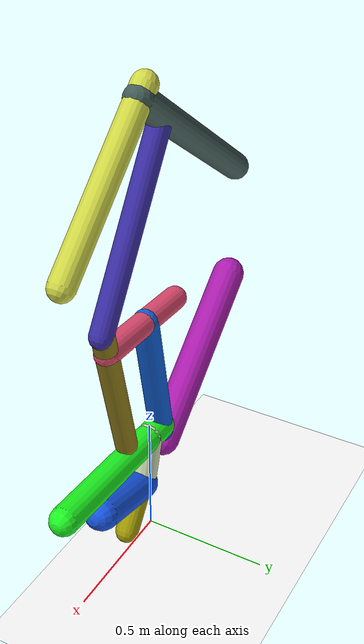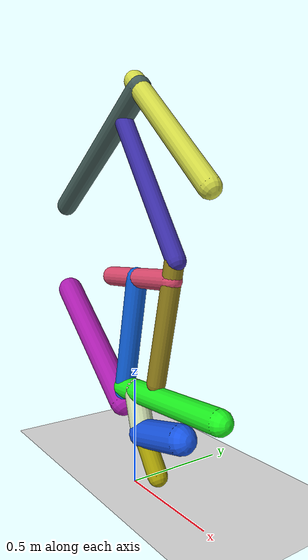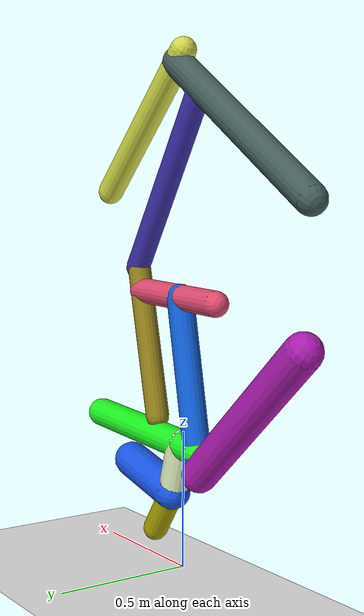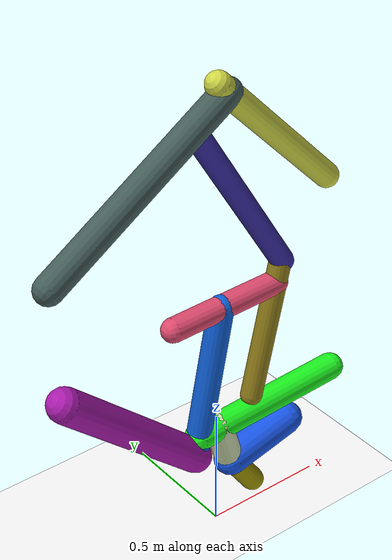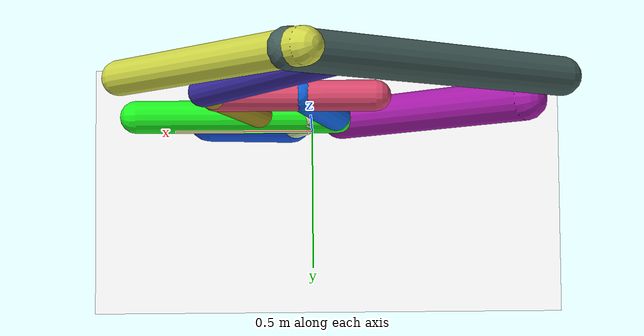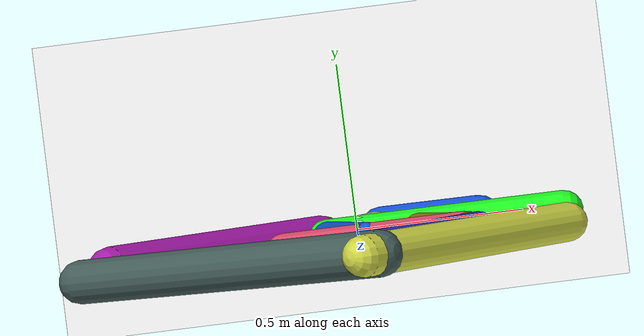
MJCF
<mujoco model="morphology">
  <option timestep="0.01"/>
  <default>
    <default class="/"/>
    <default class="0/"/>
    <default class="0/1/"/>
    <default class="0/1/2/"/>
    <default class="0/1/2/3/"/>
    <default class="0/1/2/3/4/"/>
    <default class="0/1/2/3/4/5/"/>
    <default class="0/1/2/3/4/5/6/"/>
    <default class="0/1/2/3/4/5/7/"/>
    <default class="0/1/2/3/4/5/7/8/"/>
    <default class="0/1/2/3/4/5/7/8/9/"/>
    <default class="0/1/2/3/4/5/7/8/9/10/"/>
  </default>
  <asset>
    <texture name="texplane" type="2d" builtin="checker" rgb1="0.10000000000000001 0.20000000000000001 0.29999999999999999" rgb2="0.20000000000000001 0.29999999999999999 0.40000000000000002" width="300" height="300"/>
    <material name="MatPlane" class="/" texture="texplane" texrepeat="20 20" specular="1" shininess="1" reflectance="0.5"/>
  </asset>
  <worldbody>
    <light name="//unnamed_light_0" class="/" directional="true" pos="0 0 1.5" dir="0 0 -1.3" cutoff="100" exponent="1" diffuse="1 1 1" specular="0.10000000000000001 0.10000000000000001 0.10000000000000001"/>
    <geom name="ground" class="/" type="plane" size="15 15 0.5" material="MatPlane" rgba="1 1 1 1"/>
    <site name="body" class="/" size="9.9999999999999995e-07 9.9999999999999995e-07 9.9999999999999995e-07" pos="0 0 1.8544649839401246"/>
    <body pos="0 0 1.8544649839401246" name="0/">
      <joint name="0/rootx/" class="/" type="slide" axis="1 0 0" limited="false" stiffness="0" armature="0" damping="0"/>
      <joint name="0/rootz/" class="/" type="slide" axis="0 0 1" limited="false" stiffness="0" armature="0" damping="0"/>
      <joint name="0/rooty/" class="/" type="hinge" axis="0 1 0" limited="false" stiffness="0" armature="0" damping="0"/>
      <geom name="0/geom" class="0/" type="capsule" contype="1" conaffinity="1" condim="3" size="0.04784556429285336" rgba="0.81691413145154379 0.84487350370368353 0.27205490387010611 1" friction="0.59999999999999998 0.10000000000000001 0.10000000000000001" fromto="0 0 0 0.50378492473693637 0 -0.48854958177617175"/>
      <site name="0/end0" class="0/" size="0.0050000000000000001" pos="0.50378492473693637 0 -0.48854958177617175"/>
      <site name="0/attach1" class="0/" size="9.9999999999999995e-07 9.9999999999999995e-07 9.9999999999999995e-07" pos="0.037556541815402938 0 -0.036420765878326725"/>
      <body pos="0.037556541815402938 0 -0.036420765878326725" name="0/1/">
        <geom name="0/1/geom" class="0/1/" type="capsule" contype="1" conaffinity="1" condim="3" size="0.053631309290933397" rgba="0.26112028284695277 0.36130512508762902 0.34602850736630164 1" friction="0.59999999999999998 0.10000000000000001 0.10000000000000001" fromto="0 0 0 -0.72490948957239532 0 -0.48255206754688085"/>
        <site name="0/1/end1" class="0/1/" size="0.0050000000000000001" pos="-0.72490948957239532 0 -0.48255206754688085"/>
        <site name="0/1/attach2" class="0/1/" size="9.9999999999999995e-07 9.9999999999999995e-07 9.9999999999999995e-07" pos="-0.1429219519404184 0 -0.095139164818171695"/>
        <body pos="-0.1429219519404184 0 -0.095139164818171695" name="0/1/2/">
          <joint name="0/1/2/joint/" class="0/1/" type="hinge" axis="0 1 0" limited="true" range="-48.412094305520647 48.412094305520647"/>
          <geom name="0/1/2/geom" class="0/1/2/" type="capsule" contype="1" conaffinity="1" condim="3" size="0.043833414145253838" rgba="0.23330617205092985 0.18199669296737431 0.66009352087640716 1" friction="0.59999999999999998 0.10000000000000001 0.10000000000000001" fromto="0 0 0 0.41022373427865633 0 -0.64452806211893843"/>
          <site name="0/1/2/end2" class="0/1/2/" size="0.0050000000000000001" pos="0.41022373427865633 0 -0.64452806211893843"/>
          <site name="0/1/2/attach3" class="0/1/2/" size="9.9999999999999995e-07 9.9999999999999995e-07 9.9999999999999995e-07" pos="0.40274791381113495 0 -0.63278233490704672"/>
          <body pos="0.40274791381113495 0 -0.63278233490704672" name="0/1/2/3/">
            <geom name="0/1/2/3/geom" class="0/1/2/3/" type="capsule" contype="1" conaffinity="1" condim="3" size="0.043082519438887953" rgba="0.57246708756654496 0.49984239835678257 0.10286826250383541 1" friction="0.59999999999999998 0.10000000000000001 0.10000000000000001" fromto="0 0 0 -0.12767029213204695 0 -0.5629309291512079"/>
            <site name="0/1/2/3/end3" class="0/1/2/3/" size="0.0050000000000000001" pos="-0.12767029213204695 0 -0.5629309291512079"/>
            <site name="0/1/2/3/attach4" class="0/1/2/3/" size="9.9999999999999995e-07 9.9999999999999995e-07 9.9999999999999995e-07" pos="-0.021478443599260134 0 -0.094703944121534198"/>
            <body pos="-0.021478443599260134 0 -0.094703944121534198" name="0/1/2/3/4/">
              <joint name="0/1/2/3/4/joint/" class="0/1/2/3/" type="hinge" axis="0 1 0" limited="true" range="-34.78917094441001 34.78917094441001"/>
              <geom name="0/1/2/3/4/geom" class="0/1/2/3/4/" type="capsule" contype="1" conaffinity="1" condim="3" size="0.046423271429815019" rgba="0.87488706965251828 0.28946244584163106 0.4336988841710222 1" friction="0.59999999999999998 0.10000000000000001 0.10000000000000001" fromto="0 0 0 -0.47339221208557281 0 -0.017690971611947548"/>
              <site name="0/1/2/3/4/end4" class="0/1/2/3/4/" size="0.0050000000000000001" pos="-0.47339221208557281 0 -0.017690971611947548"/>
              <site name="0/1/2/3/4/attach5" class="0/1/2/3/4/" size="9.9999999999999995e-07 9.9999999999999995e-07 9.9999999999999995e-07" pos="-0.25745681637322632 0 -0.0096213269113472766"/>
              <body pos="-0.25745681637322632 0 -0.0096213269113472766" name="0/1/2/3/4/5/">
                <joint name="0/1/2/3/4/5/joint/" class="0/1/2/3/4/" type="hinge" axis="0 1 0" limited="true" range="-40.282149688143875 40.282149688143875"/>
                <geom name="0/1/2/3/4/5/geom" class="0/1/2/3/4/5/" type="capsule" contype="1" conaffinity="1" condim="3" size="0.049090770712638225" rgba="0.059218023578830881 0.37690203841174919 0.84769959031787268 1" friction="0.59999999999999998 0.10000000000000001 0.10000000000000001" fromto="0 0 0 -0.12435271123315284 0 -0.63655110674648374"/>
                <site name="0/1/2/3/4/5/end5" class="0/1/2/3/4/5/" size="0.0050000000000000001" pos="-0.12435271123315284 0 -0.63655110674648374"/>
                <site name="0/1/2/3/4/5/attach6" class="0/1/2/3/4/5/" size="9.9999999999999995e-07 9.9999999999999995e-07 9.9999999999999995e-07" pos="-0.12156027526830937 0 -0.62225686107775002"/>
                <body pos="-0.12156027526830937 0 -0.62225686107775002" name="0/1/2/3/4/5/6/">
                  <joint name="0/1/2/3/4/5/6/joint/" class="0/1/2/3/4/5/" type="hinge" axis="0 1 0" limited="true" range="-56.321183538581138 56.321183538581138"/>
                  <geom name="0/1/2/3/4/5/6/geom" class="0/1/2/3/4/5/6/" type="capsule" contype="1" conaffinity="1" condim="3" size="0.065550912684952237" rgba="0.6680953064898254 0.10594095452186825 0.68197733982703734 1" friction="0.59999999999999998 0.10000000000000001 0.10000000000000001" fromto="0 0 0 -0.55590541889853617 0 0.50128633787170651"/>
                  <site name="0/1/2/3/4/5/6/end6" class="0/1/2/3/4/5/6/" size="0.0050000000000000001" pos="-0.55590541889853617 0 0.50128633787170651"/>
                </body>
                <site name="0/1/2/3/4/5/attach7" class="0/1/2/3/4/5/" size="9.9999999999999995e-07 9.9999999999999995e-07 9.9999999999999995e-07" pos="-0.10548777726419005 0 -0.539983090837868"/>
                <body pos="-0.10548777726419005 0 -0.539983090837868" name="0/1/2/3/4/5/7/">
                  <joint name="0/1/2/3/4/5/7/joint/" class="0/1/2/3/4/5/" type="hinge" axis="0 1 0" limited="true" range="-61.993831916315941 61.993831916315941"/>
                  <geom name="0/1/2/3/4/5/7/geom" class="0/1/2/3/4/5/7/" type="capsule" contype="1" conaffinity="1" condim="3" size="0.054843044220437204" rgba="0.11504558239839957 0.97617618154669905 0.12955242800476729 1" friction="0.59999999999999998 0.10000000000000001 0.10000000000000001" fromto="0 0 0 0.66661157729201048 0 0.034212695688440098"/>
                  <site name="0/1/2/3/4/5/7/end7" class="0/1/2/3/4/5/7/" size="0.0050000000000000001" pos="0.66661157729201048 0 0.034212695688440098"/>
                  <site name="0/1/2/3/4/5/7/attach8" class="0/1/2/3/4/5/7/" size="9.9999999999999995e-07 9.9999999999999995e-07 9.9999999999999995e-07" pos="0.097425669945846491 0 0.0050002053844311464"/>
                  <body pos="0.097425669945846491 0 0.0050002053844311464" name="0/1/2/3/4/5/7/8/">
                    <joint name="0/1/2/3/4/5/7/8/joint/" class="0/1/2/3/4/5/7/" type="hinge" axis="0 1 0" limited="true" range="-65.514646037745038 65.514646037745038"/>
                    <geom name="0/1/2/3/4/5/7/8/geom" class="0/1/2/3/4/5/7/8/" type="capsule" contype="1" conaffinity="1" condim="3" size="0.05576517799390654" rgba="0.82595274945842545 0.88775145904058994 0.7040583522625169 1" friction="0.59999999999999998 0.10000000000000001 0.10000000000000001" fromto="0 0 0 0.05273116081403828 0 -0.17641836534666844"/>
                    <site name="0/1/2/3/4/5/7/8/end8" class="0/1/2/3/4/5/7/8/" size="0.0050000000000000001" pos="0.05273116081403828 0 -0.17641836534666844"/>
                    <site name="0/1/2/3/4/5/7/8/attach9" class="0/1/2/3/4/5/7/8/" size="9.9999999999999995e-07 9.9999999999999995e-07 9.9999999999999995e-07" pos="0.052445105501512962 0 -0.17546133330232527"/>
                    <body pos="0.052445105501512962 0 -0.17546133330232527" name="0/1/2/3/4/5/7/8/9/">
                      <joint name="0/1/2/3/4/5/7/8/9/joint/" class="0/1/2/3/4/5/7/8/" type="hinge" axis="0 1 0" limited="true" range="-36.351382527644745 36.351382527644745"/>
                      <geom name="0/1/2/3/4/5/7/8/9/geom" class="0/1/2/3/4/5/7/8/9/" type="capsule" contype="1" conaffinity="1" condim="3" size="0.046495636738576644" rgba="0.64997618537321666 0.61513018793441743 0.012799845102829499 1" friction="0.59999999999999998 0.10000000000000001 0.10000000000000001" fromto="0 0 0 0.12195001451722343 0 -0.17535323423352112"/>
                      <site name="0/1/2/3/4/5/7/8/9/end9" class="0/1/2/3/4/5/7/8/9/" size="0.0050000000000000001" pos="0.12195001451722343 0 -0.17535323423352112"/>
                      <site name="0/1/2/3/4/5/7/8/9/attach10" class="0/1/2/3/4/5/7/8/9/" size="9.9999999999999995e-07 9.9999999999999995e-07 9.9999999999999995e-07" pos="0.0075778997504241238 0 -0.010896343351780333"/>
                      <body pos="0.0075778997504241238 0 -0.010896343351780333" name="0/1/2/3/4/5/7/8/9/10/">
                        <joint name="0/1/2/3/4/5/7/8/9/10/joint/" class="0/1/2/3/4/5/7/8/9/" type="hinge" axis="0 1 0" limited="true" range="-55.548220943282587 55.548220943282587"/>
                        <geom name="0/1/2/3/4/5/7/8/9/10/geom" class="0/1/2/3/4/5/7/8/9/10/" type="capsule" contype="1" conaffinity="1" condim="3" size="0.067092221545184502" rgba="0.095370901174882894 0.34224256896455363 0.91256082593888554 1" friction="0.59999999999999998 0.10000000000000001 0.10000000000000001" fromto="0 0 0 0.28087267869222643 0 0.066281708951023699"/>
                        <site name="0/1/2/3/4/5/7/8/9/10/end10" class="0/1/2/3/4/5/7/8/9/10/" size="0.0050000000000000001" pos="0.28087267869222643 0 0.066281708951023699"/>
                      </body>
                    </body>
                  </body>
                </body>
              </body>
            </body>
          </body>
        </body>
      </body>
      <camera name="0/side" class="0/" mode="trackcom" pos="0.40000000000000002 -4 0.20000000000000001" quat="0.70699999999999996 0.70699999999999996 0 0"/>
    </body>
  </worldbody>
  <actuator>
    <motor name="0/1/2/motor" class="0/1/2/" ctrllimited="true" ctrlrange="-1 1" gear="63" joint="0/1/2/joint/"/>
    <motor name="0/1/2/3/4/motor" class="0/1/2/3/4/" ctrllimited="true" ctrlrange="-1 1" gear="85" joint="0/1/2/3/4/joint/"/>
    <motor name="0/1/2/3/4/5/motor" class="0/1/2/3/4/5/" ctrllimited="true" ctrlrange="-1 1" gear="87" joint="0/1/2/3/4/5/joint/"/>
    <motor name="0/1/2/3/4/5/6/motor" class="0/1/2/3/4/5/6/" ctrllimited="true" ctrlrange="-1 1" gear="64" joint="0/1/2/3/4/5/6/joint/"/>
    <motor name="0/1/2/3/4/5/7/motor" class="0/1/2/3/4/5/7/" ctrllimited="true" ctrlrange="-1 1" gear="73" joint="0/1/2/3/4/5/7/joint/"/>
    <motor name="0/1/2/3/4/5/7/8/motor" class="0/1/2/3/4/5/7/8/" ctrllimited="true" ctrlrange="-1 1" gear="61" joint="0/1/2/3/4/5/7/8/joint/"/>
    <motor name="0/1/2/3/4/5/7/8/9/motor" class="0/1/2/3/4/5/7/8/9/" ctrllimited="true" ctrlrange="-1 1" gear="77" joint="0/1/2/3/4/5/7/8/9/joint/"/>
    <motor name="0/1/2/3/4/5/7/8/9/10/motor" class="0/1/2/3/4/5/7/8/9/10/" ctrllimited="true" ctrlrange="-1 1" gear="79" joint="0/1/2/3/4/5/7/8/9/10/joint/"/>
  </actuator>
  <sensor>
    <subtreelinvel name="velocity" body="0/"/>
  </sensor>
</mujoco>
